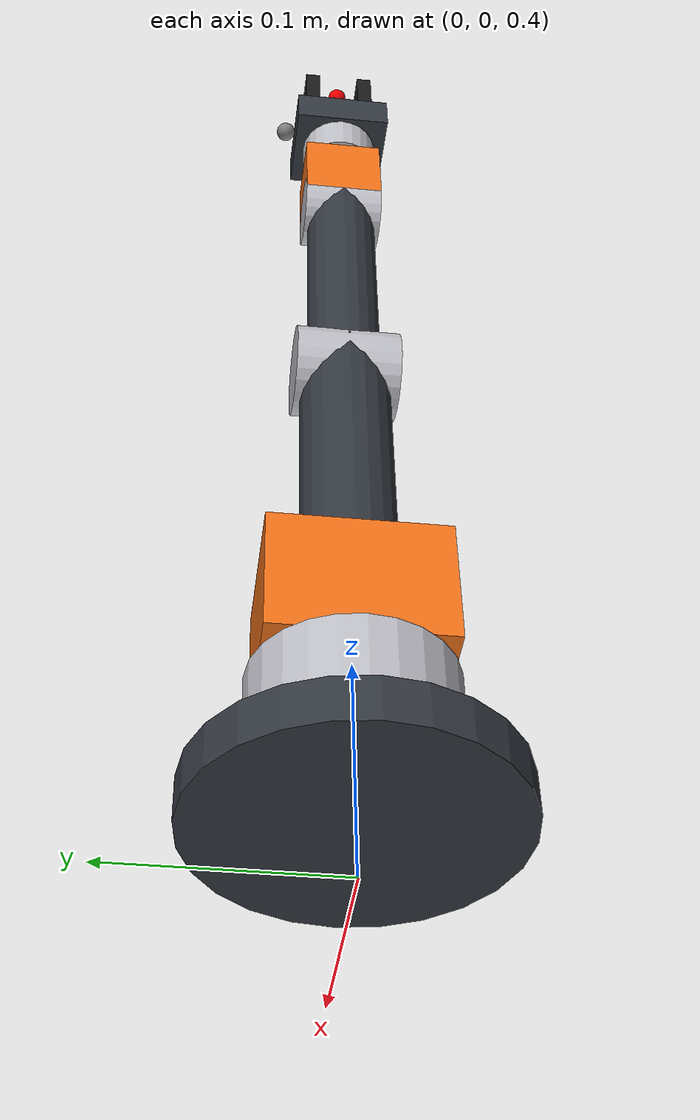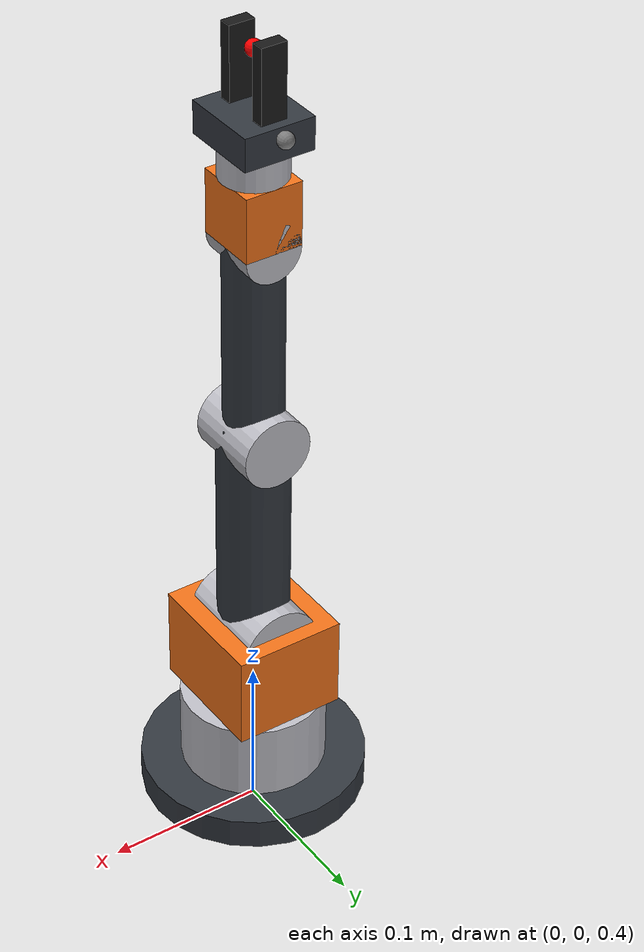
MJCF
<mujoco model="so101">
  <compiler angle="degree" coordinate="local"/>

  <default>
    <joint damping="0.5" armature="0.01" frictionloss="0.1"/>
    <geom friction="1.0 0.005 0.0001" solref="0.01 1" solimp="0.9 0.95 0.001"/>
    <position kp="40" kv="5"/>
  </default>

  <asset>
    <material name="arm_dark" rgba="0.2 0.22 0.25 1.0" roughness="0.6"/>
    <material name="arm_accent" rgba="0.95 0.45 0.1 1.0" roughness="0.4"/>
    <material name="gripper_mat" rgba="0.1 0.1 0.1 1.0" roughness="0.5"/>
    <material name="joint_metal" rgba="0.75 0.75 0.78 1.0" metallic="0.8" roughness="0.3"/>
  </asset>

  <worldbody>
    <!-- SO-101 Arm Mount (mounted at z = 0.42 on table) -->
    <body name="so101_base" pos="0 0 0.42">
      <geom name="base_plate" type="cylinder" size="0.07 0.01" pos="0 0 0.01" material="arm_dark"/>
      <geom name="base_turret" type="cylinder" size="0.045 0.025" pos="0 0 0.045" material="joint_metal"/>

      <!-- Joint 1: Base Yaw (Pan) -->
      <body name="link_1_yaw" pos="0 0 0.07">
        <joint name="joint_base_yaw" type="hinge" axis="0 0 1" range="-150 150"/>
        <geom name="link_1_visual" type="box" size="0.035 0.04 0.03" pos="0 0 0.03" material="arm_accent"/>

        <!-- Joint 2: Shoulder Pitch -->
        <body name="link_2_shoulder" pos="0 0 0.05">
          <joint name="joint_shoulder_pitch" type="hinge" axis="0 1 0" range="-110 110"/>
          <geom name="shoulder_joint_hub" type="cylinder" size="0.025 0.03" quat="0.7071 0.7071 0 0" material="joint_metal"/>
          <geom name="upper_arm_link" type="capsule" fromto="0 0 0 0 0 0.14" size="0.022" material="arm_dark"/>

          <!-- Joint 3: Elbow Pitch -->
          <body name="link_3_elbow" pos="0 0 0.14">
            <joint name="joint_elbow_pitch" type="hinge" axis="0 1 0" range="-120 120"/>
            <geom name="elbow_joint_hub" type="cylinder" size="0.022 0.025" quat="0.7071 0.7071 0 0" material="joint_metal"/>
            <geom name="forearm_link" type="capsule" fromto="0 0 0 0 0 0.13" size="0.018" material="arm_dark"/>

            <!-- Joint 4: Wrist Pitch -->
            <body name="link_4_wrist_pitch" pos="0 0 0.13">
              <joint name="joint_wrist_pitch" type="hinge" axis="0 1 0" range="-110 110"/>
              <geom name="wrist_pitch_hub" type="cylinder" size="0.018 0.02" quat="0.7071 0.7071 0 0" material="joint_metal"/>
              <geom name="wrist_pitch_body" type="box" size="0.018 0.02 0.02" pos="0 0 0.02" material="arm_accent"/>

              <!-- Joint 5: Wrist Roll -->
              <body name="link_5_wrist_roll" pos="0 0 0.04">
                <joint name="joint_wrist_roll" type="hinge" axis="0 0 1" range="-180 180"/>
                <geom name="wrist_roll_flange" type="cylinder" size="0.02 0.012" pos="0 0 0.012" material="joint_metal"/>
                <geom name="gripper_mount" type="box" size="0.022 0.025 0.01" pos="0 0 0.03" material="arm_dark"/>

                <!-- End Effector Site / Camera -->
                <site name="wrist_cam_site" pos="0 0.03 0.035" quat="0.7071 0.7071 0 0"/>
                <site name="gripper_site" pos="0 0 0.075" size="0.005" rgba="1 0 0 1"/>

                <!-- Joint 6: Gripper Jaw (Main finger) -->
                <body name="gripper_finger_left" pos="0 0.015 0.035">
                  <joint name="joint_gripper" type="hinge" axis="1 0 0" range="0 40"/>
                  <geom name="finger_left_geom" type="box" size="0.008 0.004 0.025" pos="0 0 0.025" material="gripper_mat"/>
                </body>

                <!-- Gripper Finger Right -->
                <body name="gripper_finger_right" pos="0 -0.015 0.035">
                  <geom name="finger_right_geom" type="box" size="0.008 0.004 0.025" pos="0 0 0.025" material="gripper_mat"/>
                </body>
              </body>
            </body>
          </body>
        </body>
      </body>
    </body>
  </worldbody>

  <actuator>
    <position name="actuator_base_yaw" joint="joint_base_yaw" ctrlrange="-150 150"/>
    <position name="actuator_shoulder_pitch" joint="joint_shoulder_pitch" ctrlrange="-110 110"/>
    <position name="actuator_elbow_pitch" joint="joint_elbow_pitch" ctrlrange="-120 120"/>
    <position name="actuator_wrist_pitch" joint="joint_wrist_pitch" ctrlrange="-110 110"/>
    <position name="actuator_wrist_roll" joint="joint_wrist_roll" ctrlrange="-180 180"/>
    <position name="actuator_gripper" joint="joint_gripper" ctrlrange="0 40"/>
  </actuator>
</mujoco>
